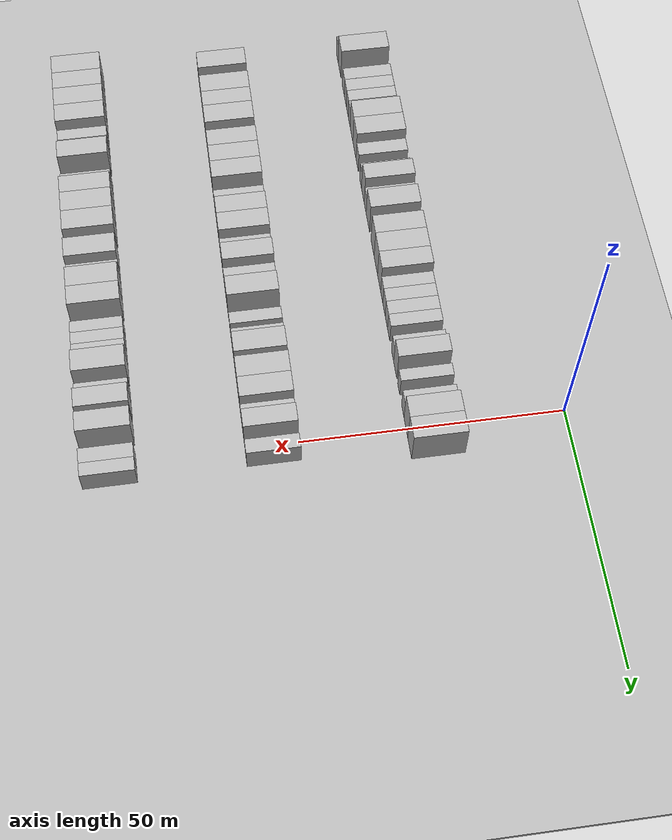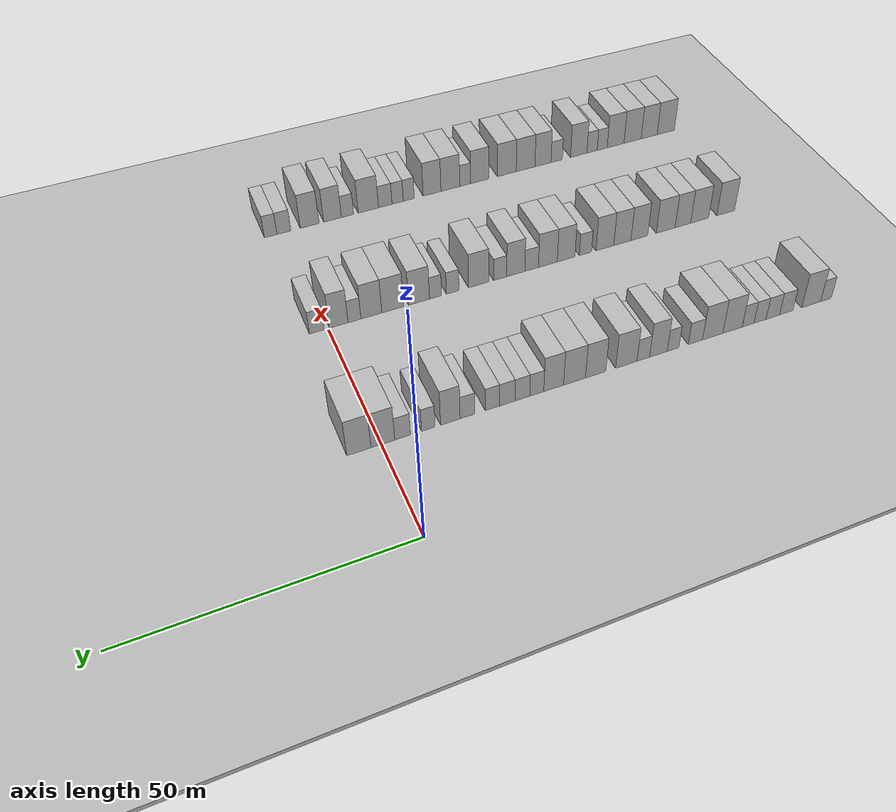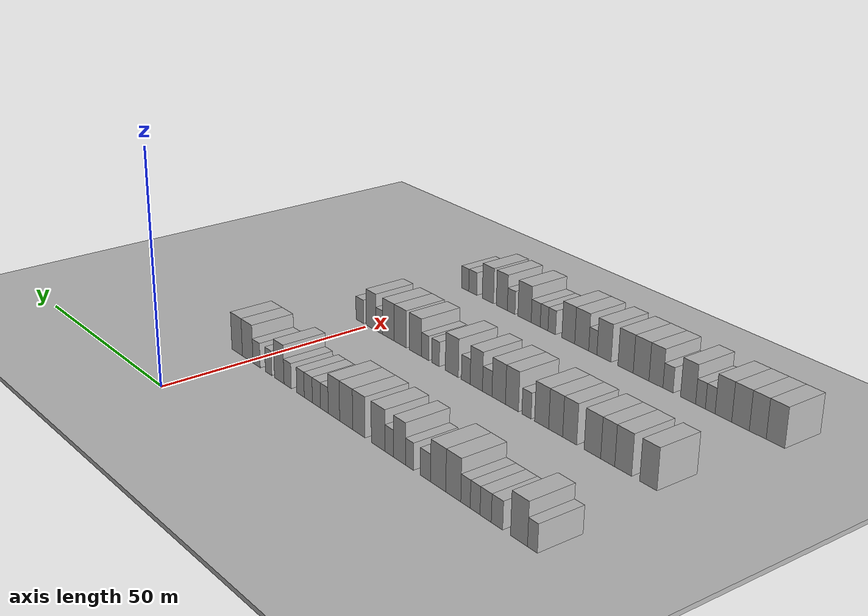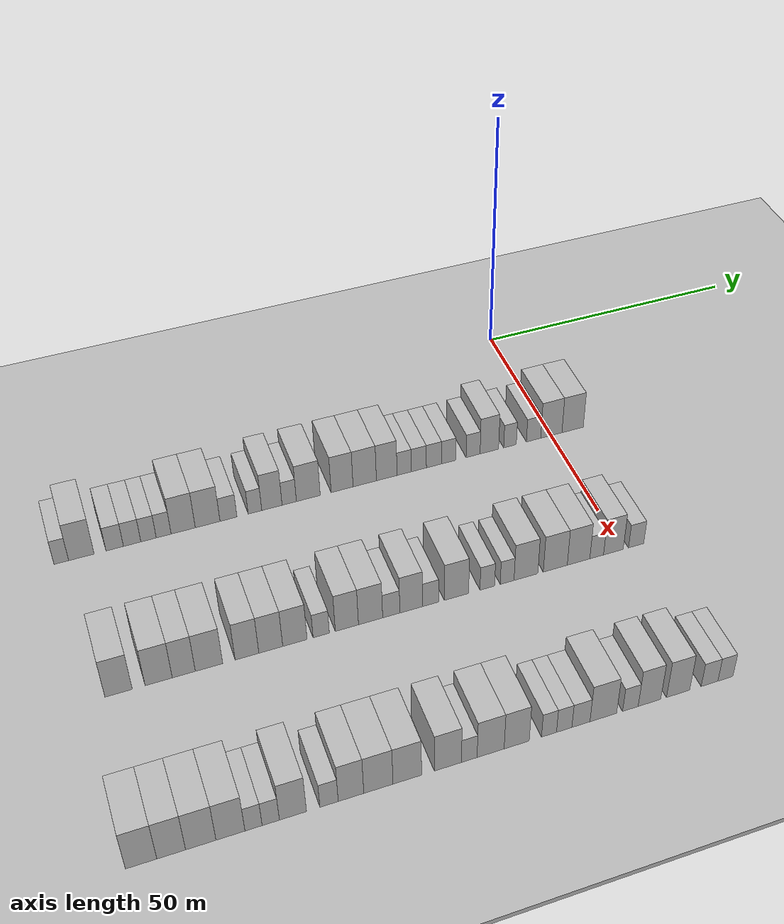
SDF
<sdf version="1.6">
 <world name="default">
  <include><name>ground_plane_1</name><uri>model://HANNAS_ground_plane</uri></include>
  <include>
   <name>ground_plane_2</name>
   <uri>model://HANNAS_ground_plane</uri>
   <pose>100 0 0  0 0 0</pose>
  </include>
  <model name="building_48">
   <static>1</static>
   <pose>25.0000 -89.6602 0 0.000000 0.000000 0.000000</pose>
   <link name="link">
    <pose>0 0 3.00 0 0 0</pose>
    <collision name="collision"><geometry><box><size>10.0000 2.4534 6.0000</size></box></geometry></collision>
    <visual name="visual">
     <cast_shadows>0</cast_shadows>
     <geometry><box><size>10.0000 2.4534 6.0000</size></box></geometry>
     <material>
      <script>
       <uri>model://HANNAS_wall/materials/scripts</uri>
       <uri>model://HANNAS_wall/materials/textures</uri>
       <name>vrc/HANNAS_wall</name>
      </script>
     </material>
    </visual>
   </link>
  </model>
  <model name="building_49">
   <static>1</static>
   <pose>25.0000 -86.2906 0 0.000000 0.000000 0.000000</pose>
   <link name="link">
    <pose>0 0 4.50 0 0 0</pose>
    <collision name="collision"><geometry><box><size>10.0000 4.2859 9.0000</size></box></geometry></collision>
    <visual name="visual">
     <cast_shadows>0</cast_shadows>
     <geometry><box><size>10.0000 4.2859 9.0000</size></box></geometry>
     <material>
      <script>
       <uri>model://HANNAS_wall/materials/scripts</uri>
       <uri>model://HANNAS_wall/materials/textures</uri>
       <name>vrc/HANNAS_wall</name>
      </script>
     </material>
    </visual>
   </link>
  </model>
  <model name="building_50">
   <static>1</static>
   <pose>25.0000 -80.6596 0 0.000000 0.000000 0.000000</pose>
   <link name="link">
    <pose>0 0 3.00 0 0 0</pose>
    <collision name="collision"><geometry><box><size>10.0000 2.9761 6.0000</size></box></geometry></collision>
    <visual name="visual">
     <cast_shadows>0</cast_shadows>
     <geometry><box><size>10.0000 2.9761 6.0000</size></box></geometry>
     <material>
      <script>
       <uri>model://HANNAS_wall/materials/scripts</uri>
       <uri>model://HANNAS_wall/materials/textures</uri>
       <name>vrc/HANNAS_wall</name>
      </script>
     </material>
    </visual>
   </link>
  </model>
  <model name="building_51">
   <static>1</static>
   <pose>25.0000 -77.6832 0 0.000000 0.000000 0.000000</pose>
   <link name="link">
    <pose>0 0 3.00 0 0 0</pose>
    <collision name="collision"><geometry><box><size>10.0000 2.9765 6.0000</size></box></geometry></collision>
    <visual name="visual">
     <cast_shadows>0</cast_shadows>
     <geometry><box><size>10.0000 2.9765 6.0000</size></box></geometry>
     <material>
      <script>
       <uri>model://HANNAS_wall/materials/scripts</uri>
       <uri>model://HANNAS_wall/materials/textures</uri>
       <name>vrc/HANNAS_wall</name>
      </script>
     </material>
    </visual>
   </link>
  </model>
  <model name="building_52">
   <static>1</static>
   <pose>25.0000 -74.8702 0 0.000000 0.000000 0.000000</pose>
   <link name="link">
    <pose>0 0 3.00 0 0 0</pose>
    <collision name="collision"><geometry><box><size>10.0000 2.6497 6.0000</size></box></geometry></collision>
    <visual name="visual">
     <cast_shadows>0</cast_shadows>
     <geometry><box><size>10.0000 2.6497 6.0000</size></box></geometry>
     <material>
      <script>
       <uri>model://HANNAS_wall/materials/scripts</uri>
       <uri>model://HANNAS_wall/materials/textures</uri>
       <name>vrc/HANNAS_wall</name>
      </script>
     </material>
    </visual>
   </link>
  </model>
  <model name="building_53">
   <static>1</static>
   <pose>25.0000 -72.2562 0 0.000000 0.000000 0.000000</pose>
   <link name="link">
    <pose>0 0 3.00 0 0 0</pose>
    <collision name="collision"><geometry><box><size>10.0000 2.5783 6.0000</size></box></geometry></collision>
    <visual name="visual">
     <cast_shadows>0</cast_shadows>
     <geometry><box><size>10.0000 2.5783 6.0000</size></box></geometry>
     <material>
      <script>
       <uri>model://HANNAS_wall/materials/scripts</uri>
       <uri>model://HANNAS_wall/materials/textures</uri>
       <name>vrc/HANNAS_wall</name>
      </script>
     </material>
    </visual>
   </link>
  </model>
  <model name="building_54">
   <static>1</static>
   <pose>25.0000 -68.8638 0 0.000000 0.000000 0.000000</pose>
   <link name="link">
    <pose>0 0 4.50 0 0 0</pose>
    <collision name="collision"><geometry><box><size>10.0000 4.2063 9.0000</size></box></geometry></collision>
    <visual name="visual">
     <cast_shadows>0</cast_shadows>
     <geometry><box><size>10.0000 4.2063 9.0000</size></box></geometry>
     <material>
      <script>
       <uri>model://HANNAS_wall/materials/scripts</uri>
       <uri>model://HANNAS_wall/materials/textures</uri>
       <name>vrc/HANNAS_wall</name>
      </script>
     </material>
    </visual>
   </link>
  </model>
  <model name="building_55">
   <static>1</static>
   <pose>25.0000 -64.5815 0 0.000000 0.000000 0.000000</pose>
   <link name="link">
    <pose>0 0 4.50 0 0 0</pose>
    <collision name="collision"><geometry><box><size>10.0000 4.3584 9.0000</size></box></geometry></collision>
    <visual name="visual">
     <cast_shadows>0</cast_shadows>
     <geometry><box><size>10.0000 4.3584 9.0000</size></box></geometry>
     <material>
      <script>
       <uri>model://HANNAS_wall/materials/scripts</uri>
       <uri>model://HANNAS_wall/materials/textures</uri>
       <name>vrc/HANNAS_wall</name>
      </script>
     </material>
    </visual>
   </link>
  </model>
  <model name="building_56">
   <static>1</static>
   <pose>25.0000 -60.9040 0 0.000000 0.000000 0.000000</pose>
   <link name="link">
    <pose>0 0 3.00 0 0 0</pose>
    <collision name="collision"><geometry><box><size>10.0000 2.9964 6.0000</size></box></geometry></collision>
    <visual name="visual">
     <cast_shadows>0</cast_shadows>
     <geometry><box><size>10.0000 2.9964 6.0000</size></box></geometry>
     <material>
      <script>
       <uri>model://HANNAS_wall/materials/scripts</uri>
       <uri>model://HANNAS_wall/materials/textures</uri>
       <name>vrc/HANNAS_wall</name>
      </script>
     </material>
    </visual>
   </link>
  </model>
  <model name="building_57">
   <static>1</static>
   <pose>25.0000 -56.1907 0 0.000000 0.000000 0.000000</pose>
   <link name="link">
    <pose>0 0 3.00 0 0 0</pose>
    <collision name="collision"><geometry><box><size>10.0000 2.4303 6.0000</size></box></geometry></collision>
    <visual name="visual">
     <cast_shadows>0</cast_shadows>
     <geometry><box><size>10.0000 2.4303 6.0000</size></box></geometry>
     <material>
      <script>
       <uri>model://HANNAS_wall/materials/scripts</uri>
       <uri>model://HANNAS_wall/materials/textures</uri>
       <name>vrc/HANNAS_wall</name>
      </script>
     </material>
    </visual>
   </link>
  </model>
  <model name="building_58">
   <static>1</static>
   <pose>25.0000 -53.1462 0 0.000000 0.000000 0.000000</pose>
   <link name="link">
    <pose>0 0 4.50 0 0 0</pose>
    <collision name="collision"><geometry><box><size>10.0000 3.6588 9.0000</size></box></geometry></collision>
    <visual name="visual">
     <cast_shadows>0</cast_shadows>
     <geometry><box><size>10.0000 3.6588 9.0000</size></box></geometry>
     <material>
      <script>
       <uri>model://HANNAS_wall/materials/scripts</uri>
       <uri>model://HANNAS_wall/materials/textures</uri>
       <name>vrc/HANNAS_wall</name>
      </script>
     </material>
    </visual>
   </link>
  </model>
  <model name="building_59">
   <static>1</static>
   <pose>25.0000 -50.0211 0 0.000000 0.000000 0.000000</pose>
   <link name="link">
    <pose>0 0 3.00 0 0 0</pose>
    <collision name="collision"><geometry><box><size>10.0000 2.5912 6.0000</size></box></geometry></collision>
    <visual name="visual">
     <cast_shadows>0</cast_shadows>
     <geometry><box><size>10.0000 2.5912 6.0000</size></box></geometry>
     <material>
      <script>
       <uri>model://HANNAS_wall/materials/scripts</uri>
       <uri>model://HANNAS_wall/materials/textures</uri>
       <name>vrc/HANNAS_wall</name>
      </script>
     </material>
    </visual>
   </link>
  </model>
  <model name="building_60">
   <static>1</static>
   <pose>25.0000 -46.5544 0 0.000000 0.000000 0.000000</pose>
   <link name="link">
    <pose>0 0 4.50 0 0 0</pose>
    <collision name="collision"><geometry><box><size>10.0000 4.3423 9.0000</size></box></geometry></collision>
    <visual name="visual">
     <cast_shadows>0</cast_shadows>
     <geometry><box><size>10.0000 4.3423 9.0000</size></box></geometry>
     <material>
      <script>
       <uri>model://HANNAS_wall/materials/scripts</uri>
       <uri>model://HANNAS_wall/materials/textures</uri>
       <name>vrc/HANNAS_wall</name>
      </script>
     </material>
    </visual>
   </link>
  </model>
  <model name="building_61">
   <static>1</static>
   <pose>25.0000 -40.3584 0 0.000000 0.000000 0.000000</pose>
   <link name="link">
    <pose>0 0 4.50 0 0 0</pose>
    <collision name="collision"><geometry><box><size>10.0000 4.0495 9.0000</size></box></geometry></collision>
    <visual name="visual">
     <cast_shadows>0</cast_shadows>
     <geometry><box><size>10.0000 4.0495 9.0000</size></box></geometry>
     <material>
      <script>
       <uri>model://HANNAS_wall/materials/scripts</uri>
       <uri>model://HANNAS_wall/materials/textures</uri>
       <name>vrc/HANNAS_wall</name>
      </script>
     </material>
    </visual>
   </link>
  </model>
  <model name="building_62">
   <static>1</static>
   <pose>25.0000 -36.1582 0 0.000000 0.000000 0.000000</pose>
   <link name="link">
    <pose>0 0 4.50 0 0 0</pose>
    <collision name="collision"><geometry><box><size>10.0000 4.3509 9.0000</size></box></geometry></collision>
    <visual name="visual">
     <cast_shadows>0</cast_shadows>
     <geometry><box><size>10.0000 4.3509 9.0000</size></box></geometry>
     <material>
      <script>
       <uri>model://HANNAS_wall/materials/scripts</uri>
       <uri>model://HANNAS_wall/materials/textures</uri>
       <name>vrc/HANNAS_wall</name>
      </script>
     </material>
    </visual>
   </link>
  </model>
  <model name="building_63">
   <static>1</static>
   <pose>25.0000 -32.0426 0 0.000000 0.000000 0.000000</pose>
   <link name="link">
    <pose>0 0 4.50 0 0 0</pose>
    <collision name="collision"><geometry><box><size>10.0000 3.8803 9.0000</size></box></geometry></collision>
    <visual name="visual">
     <cast_shadows>0</cast_shadows>
     <geometry><box><size>10.0000 3.8803 9.0000</size></box></geometry>
     <material>
      <script>
       <uri>model://HANNAS_wall/materials/scripts</uri>
       <uri>model://HANNAS_wall/materials/textures</uri>
       <name>vrc/HANNAS_wall</name>
      </script>
     </material>
    </visual>
   </link>
  </model>
  <model name="building_64">
   <static>1</static>
   <pose>25.0000 -28.7479 0 0.000000 0.000000 0.000000</pose>
   <link name="link">
    <pose>0 0 3.00 0 0 0</pose>
    <collision name="collision"><geometry><box><size>10.0000 2.7091 6.0000</size></box></geometry></collision>
    <visual name="visual">
     <cast_shadows>0</cast_shadows>
     <geometry><box><size>10.0000 2.7091 6.0000</size></box></geometry>
     <material>
      <script>
       <uri>model://HANNAS_wall/materials/scripts</uri>
       <uri>model://HANNAS_wall/materials/textures</uri>
       <name>vrc/HANNAS_wall</name>
      </script>
     </material>
    </visual>
   </link>
  </model>
  <model name="building_65">
   <static>1</static>
   <pose>25.0000 -25.9696 0 0.000000 0.000000 0.000000</pose>
   <link name="link">
    <pose>0 0 3.00 0 0 0</pose>
    <collision name="collision"><geometry><box><size>10.0000 2.8474 6.0000</size></box></geometry></collision>
    <visual name="visual">
     <cast_shadows>0</cast_shadows>
     <geometry><box><size>10.0000 2.8474 6.0000</size></box></geometry>
     <material>
      <script>
       <uri>model://HANNAS_wall/materials/scripts</uri>
       <uri>model://HANNAS_wall/materials/textures</uri>
       <name>vrc/HANNAS_wall</name>
      </script>
     </material>
    </visual>
   </link>
  </model>
  <model name="building_66">
   <static>1</static>
   <pose>25.0000 -23.0898 0 0.000000 0.000000 0.000000</pose>
   <link name="link">
    <pose>0 0 3.00 0 0 0</pose>
    <collision name="collision"><geometry><box><size>10.0000 2.9123 6.0000</size></box></geometry></collision>
    <visual name="visual">
     <cast_shadows>0</cast_shadows>
     <geometry><box><size>10.0000 2.9123 6.0000</size></box></geometry>
     <material>
      <script>
       <uri>model://HANNAS_wall/materials/scripts</uri>
       <uri>model://HANNAS_wall/materials/textures</uri>
       <name>vrc/HANNAS_wall</name>
      </script>
     </material>
    </visual>
   </link>
  </model>
  <model name="building_67">
   <static>1</static>
   <pose>25.0000 -20.2765 0 0.000000 0.000000 0.000000</pose>
   <link name="link">
    <pose>0 0 3.00 0 0 0</pose>
    <collision name="collision"><geometry><box><size>10.0000 2.7142 6.0000</size></box></geometry></collision>
    <visual name="visual">
     <cast_shadows>0</cast_shadows>
     <geometry><box><size>10.0000 2.7142 6.0000</size></box></geometry>
     <material>
      <script>
       <uri>model://HANNAS_wall/materials/scripts</uri>
       <uri>model://HANNAS_wall/materials/textures</uri>
       <name>vrc/HANNAS_wall</name>
      </script>
     </material>
    </visual>
   </link>
  </model>
  <model name="building_68">
   <static>1</static>
   <pose>25.0000 -15.5667 0 0.000000 0.000000 0.000000</pose>
   <link name="link">
    <pose>0 0 3.00 0 0 0</pose>
    <collision name="collision"><geometry><box><size>10.0000 2.7056 6.0000</size></box></geometry></collision>
    <visual name="visual">
     <cast_shadows>0</cast_shadows>
     <geometry><box><size>10.0000 2.7056 6.0000</size></box></geometry>
     <material>
      <script>
       <uri>model://HANNAS_wall/materials/scripts</uri>
       <uri>model://HANNAS_wall/materials/textures</uri>
       <name>vrc/HANNAS_wall</name>
      </script>
     </material>
    </visual>
   </link>
  </model>
  <model name="building_69">
   <static>1</static>
   <pose>25.0000 -12.4061 0 0.000000 0.000000 0.000000</pose>
   <link name="link">
    <pose>0 0 4.50 0 0 0</pose>
    <collision name="collision"><geometry><box><size>10.0000 3.6156 9.0000</size></box></geometry></collision>
    <visual name="visual">
     <cast_shadows>0</cast_shadows>
     <geometry><box><size>10.0000 3.6156 9.0000</size></box></geometry>
     <material>
      <script>
       <uri>model://HANNAS_wall/materials/scripts</uri>
       <uri>model://HANNAS_wall/materials/textures</uri>
       <name>vrc/HANNAS_wall</name>
      </script>
     </material>
    </visual>
   </link>
  </model>
  <model name="building_70">
   <static>1</static>
   <pose>25.0000 -8.3591 0 0.000000 0.000000 0.000000</pose>
   <link name="link">
    <pose>0 0 3.00 0 0 0</pose>
    <collision name="collision"><geometry><box><size>10.0000 2.4783 6.0000</size></box></geometry></collision>
    <visual name="visual">
     <cast_shadows>0</cast_shadows>
     <geometry><box><size>10.0000 2.4783 6.0000</size></box></geometry>
     <material>
      <script>
       <uri>model://HANNAS_wall/materials/scripts</uri>
       <uri>model://HANNAS_wall/materials/textures</uri>
       <name>vrc/HANNAS_wall</name>
      </script>
     </material>
    </visual>
   </link>
  </model>
  <model name="building_71">
   <static>1</static>
   <pose>25.0000 -3.7026 0 0.000000 0.000000 0.000000</pose>
   <link name="link">
    <pose>0 0 3.00 0 0 0</pose>
    <collision name="collision"><geometry><box><size>10.0000 2.8347 6.0000</size></box></geometry></collision>
    <visual name="visual">
     <cast_shadows>0</cast_shadows>
     <geometry><box><size>10.0000 2.8347 6.0000</size></box></geometry>
     <material>
      <script>
       <uri>model://HANNAS_wall/materials/scripts</uri>
       <uri>model://HANNAS_wall/materials/textures</uri>
       <name>vrc/HANNAS_wall</name>
      </script>
     </material>
    </visual>
   </link>
  </model>
  <model name="building_72">
   <static>1</static>
   <pose>25.0000 -0.1595 0 0.000000 0.000000 0.000000</pose>
   <link name="link">
    <pose>0 0 4.50 0 0 0</pose>
    <collision name="collision"><geometry><box><size>10.0000 4.2514 9.0000</size></box></geometry></collision>
    <visual name="visual">
     <cast_shadows>0</cast_shadows>
     <geometry><box><size>10.0000 4.2514 9.0000</size></box></geometry>
     <material>
      <script>
       <uri>model://HANNAS_wall/materials/scripts</uri>
       <uri>model://HANNAS_wall/materials/textures</uri>
       <name>vrc/HANNAS_wall</name>
      </script>
     </material>
    </visual>
   </link>
  </model>
  <model name="building_73">
   <static>1</static>
   <pose>25.0000 4.1109 0 0.000000 0.000000 0.000000</pose>
   <link name="link">
    <pose>0 0 4.50 0 0 0</pose>
    <collision name="collision"><geometry><box><size>10.0000 4.2893 9.0000</size></box></geometry></collision>
    <visual name="visual">
     <cast_shadows>0</cast_shadows>
     <geometry><box><size>10.0000 4.2893 9.0000</size></box></geometry>
     <material>
      <script>
       <uri>model://HANNAS_wall/materials/scripts</uri>
       <uri>model://HANNAS_wall/materials/textures</uri>
       <name>vrc/HANNAS_wall</name>
      </script>
     </material>
    </visual>
   </link>
  </model>
  <model name="building_199">
   <static>1</static>
   <pose>55.0000 -85.9226 0 0.000000 0.000000 0.000000</pose>
   <link name="link">
    <pose>0 0 4.50 0 0 0</pose>
    <collision name="collision"><geometry><box><size>10.0000 4.2424 9.0000</size></box></geometry></collision>
    <visual name="visual">
     <cast_shadows>0</cast_shadows>
     <geometry><box><size>10.0000 4.2424 9.0000</size></box></geometry>
     <material>
      <script>
       <uri>model://HANNAS_wall/materials/scripts</uri>
       <uri>model://HANNAS_wall/materials/textures</uri>
       <name>vrc/HANNAS_wall</name>
      </script>
     </material>
    </visual>
   </link>
  </model>
  <model name="building_200">
   <static>1</static>
   <pose>55.0000 -79.6617 0 0.000000 0.000000 0.000000</pose>
   <link name="link">
    <pose>0 0 4.50 0 0 0</pose>
    <collision name="collision"><geometry><box><size>10.0000 4.2793 9.0000</size></box></geometry></collision>
    <visual name="visual">
     <cast_shadows>0</cast_shadows>
     <geometry><box><size>10.0000 4.2793 9.0000</size></box></geometry>
     <material>
      <script>
       <uri>model://HANNAS_wall/materials/scripts</uri>
       <uri>model://HANNAS_wall/materials/textures</uri>
       <name>vrc/HANNAS_wall</name>
      </script>
     </material>
    </visual>
   </link>
  </model>
  <model name="building_201">
   <static>1</static>
   <pose>55.0000 -75.6978 0 0.000000 0.000000 0.000000</pose>
   <link name="link">
    <pose>0 0 4.50 0 0 0</pose>
    <collision name="collision"><geometry><box><size>10.0000 3.6485 9.0000</size></box></geometry></collision>
    <visual name="visual">
     <cast_shadows>0</cast_shadows>
     <geometry><box><size>10.0000 3.6485 9.0000</size></box></geometry>
     <material>
      <script>
       <uri>model://HANNAS_wall/materials/scripts</uri>
       <uri>model://HANNAS_wall/materials/textures</uri>
       <name>vrc/HANNAS_wall</name>
      </script>
     </material>
    </visual>
   </link>
  </model>
  <model name="building_202">
   <static>1</static>
   <pose>55.0000 -71.6821 0 0.000000 0.000000 0.000000</pose>
   <link name="link">
    <pose>0 0 4.50 0 0 0</pose>
    <collision name="collision"><geometry><box><size>10.0000 4.3829 9.0000</size></box></geometry></collision>
    <visual name="visual">
     <cast_shadows>0</cast_shadows>
     <geometry><box><size>10.0000 4.3829 9.0000</size></box></geometry>
     <material>
      <script>
       <uri>model://HANNAS_wall/materials/scripts</uri>
       <uri>model://HANNAS_wall/materials/textures</uri>
       <name>vrc/HANNAS_wall</name>
      </script>
     </material>
    </visual>
   </link>
  </model>
  <model name="building_203">
   <static>1</static>
   <pose>55.0000 -65.5681 0 0.000000 0.000000 0.000000</pose>
   <link name="link">
    <pose>0 0 4.50 0 0 0</pose>
    <collision name="collision"><geometry><box><size>10.0000 3.8451 9.0000</size></box></geometry></collision>
    <visual name="visual">
     <cast_shadows>0</cast_shadows>
     <geometry><box><size>10.0000 3.8451 9.0000</size></box></geometry>
     <material>
      <script>
       <uri>model://HANNAS_wall/materials/scripts</uri>
       <uri>model://HANNAS_wall/materials/textures</uri>
       <name>vrc/HANNAS_wall</name>
      </script>
     </material>
    </visual>
   </link>
  </model>
  <model name="building_204">
   <static>1</static>
   <pose>55.0000 -61.6935 0 0.000000 0.000000 0.000000</pose>
   <link name="link">
    <pose>0 0 4.50 0 0 0</pose>
    <collision name="collision"><geometry><box><size>10.0000 3.9040 9.0000</size></box></geometry></collision>
    <visual name="visual">
     <cast_shadows>0</cast_shadows>
     <geometry><box><size>10.0000 3.9040 9.0000</size></box></geometry>
     <material>
      <script>
       <uri>model://HANNAS_wall/materials/scripts</uri>
       <uri>model://HANNAS_wall/materials/textures</uri>
       <name>vrc/HANNAS_wall</name>
      </script>
     </material>
    </visual>
   </link>
  </model>
  <model name="building_205">
   <static>1</static>
   <pose>55.0000 -57.7324 0 0.000000 0.000000 0.000000</pose>
   <link name="link">
    <pose>0 0 4.50 0 0 0</pose>
    <collision name="collision"><geometry><box><size>10.0000 4.0182 9.0000</size></box></geometry></collision>
    <visual name="visual">
     <cast_shadows>0</cast_shadows>
     <geometry><box><size>10.0000 4.0182 9.0000</size></box></geometry>
     <material>
      <script>
       <uri>model://HANNAS_wall/materials/scripts</uri>
       <uri>model://HANNAS_wall/materials/textures</uri>
       <name>vrc/HANNAS_wall</name>
      </script>
     </material>
    </visual>
   </link>
  </model>
  <model name="building_206">
   <static>1</static>
   <pose>55.0000 -53.3707 0 0.000000 0.000000 0.000000</pose>
   <link name="link">
    <pose>0 0 3.00 0 0 0</pose>
    <collision name="collision"><geometry><box><size>10.0000 2.7052 6.0000</size></box></geometry></collision>
    <visual name="visual">
     <cast_shadows>0</cast_shadows>
     <geometry><box><size>10.0000 2.7052 6.0000</size></box></geometry>
     <material>
      <script>
       <uri>model://HANNAS_wall/materials/scripts</uri>
       <uri>model://HANNAS_wall/materials/textures</uri>
       <name>vrc/HANNAS_wall</name>
      </script>
     </material>
    </visual>
   </link>
  </model>
  <model name="building_207">
   <static>1</static>
   <pose>55.0000 -49.0708 0 0.000000 0.000000 0.000000</pose>
   <link name="link">
    <pose>0 0 4.50 0 0 0</pose>
    <collision name="collision"><geometry><box><size>10.0000 3.8946 9.0000</size></box></geometry></collision>
    <visual name="visual">
     <cast_shadows>0</cast_shadows>
     <geometry><box><size>10.0000 3.8946 9.0000</size></box></geometry>
     <material>
      <script>
       <uri>model://HANNAS_wall/materials/scripts</uri>
       <uri>model://HANNAS_wall/materials/textures</uri>
       <name>vrc/HANNAS_wall</name>
      </script>
     </material>
    </visual>
   </link>
  </model>
  <model name="building_208">
   <static>1</static>
   <pose>55.0000 -45.0708 0 0.000000 0.000000 0.000000</pose>
   <link name="link">
    <pose>0 0 4.50 0 0 0</pose>
    <collision name="collision"><geometry><box><size>10.0000 4.1054 9.0000</size></box></geometry></collision>
    <visual name="visual">
     <cast_shadows>0</cast_shadows>
     <geometry><box><size>10.0000 4.1054 9.0000</size></box></geometry>
     <material>
      <script>
       <uri>model://HANNAS_wall/materials/scripts</uri>
       <uri>model://HANNAS_wall/materials/textures</uri>
       <name>vrc/HANNAS_wall</name>
      </script>
     </material>
    </visual>
   </link>
  </model>
  <model name="building_209">
   <static>1</static>
   <pose>55.0000 -41.5473 0 0.000000 0.000000 0.000000</pose>
   <link name="link">
    <pose>0 0 3.00 0 0 0</pose>
    <collision name="collision"><geometry><box><size>10.0000 2.9417 6.0000</size></box></geometry></collision>
    <visual name="visual">
     <cast_shadows>0</cast_shadows>
     <geometry><box><size>10.0000 2.9417 6.0000</size></box></geometry>
     <material>
      <script>
       <uri>model://HANNAS_wall/materials/scripts</uri>
       <uri>model://HANNAS_wall/materials/textures</uri>
       <name>vrc/HANNAS_wall</name>
      </script>
     </material>
    </visual>
   </link>
  </model>
  <model name="building_210">
   <static>1</static>
   <pose>55.0000 -38.1308 0 0.000000 0.000000 0.000000</pose>
   <link name="link">
    <pose>0 0 4.50 0 0 0</pose>
    <collision name="collision"><geometry><box><size>10.0000 3.8912 9.0000</size></box></geometry></collision>
    <visual name="visual">
     <cast_shadows>0</cast_shadows>
     <geometry><box><size>10.0000 3.8912 9.0000</size></box></geometry>
     <material>
      <script>
       <uri>model://HANNAS_wall/materials/scripts</uri>
       <uri>model://HANNAS_wall/materials/textures</uri>
       <name>vrc/HANNAS_wall</name>
      </script>
     </material>
    </visual>
   </link>
  </model>
  <model name="building_211">
   <static>1</static>
   <pose>55.0000 -34.7824 0 0.000000 0.000000 0.000000</pose>
   <link name="link">
    <pose>0 0 3.00 0 0 0</pose>
    <collision name="collision"><geometry><box><size>10.0000 2.8056 6.0000</size></box></geometry></collision>
    <visual name="visual">
     <cast_shadows>0</cast_shadows>
     <geometry><box><size>10.0000 2.8056 6.0000</size></box></geometry>
     <material>
      <script>
       <uri>model://HANNAS_wall/materials/scripts</uri>
       <uri>model://HANNAS_wall/materials/textures</uri>
       <name>vrc/HANNAS_wall</name>
      </script>
     </material>
    </visual>
   </link>
  </model>
  <model name="building_212">
   <static>1</static>
   <pose>55.0000 -30.2515 0 0.000000 0.000000 0.000000</pose>
   <link name="link">
    <pose>0 0 4.50 0 0 0</pose>
    <collision name="collision"><geometry><box><size>10.0000 4.2562 9.0000</size></box></geometry></collision>
    <visual name="visual">
     <cast_shadows>0</cast_shadows>
     <geometry><box><size>10.0000 4.2562 9.0000</size></box></geometry>
     <material>
      <script>
       <uri>model://HANNAS_wall/materials/scripts</uri>
       <uri>model://HANNAS_wall/materials/textures</uri>
       <name>vrc/HANNAS_wall</name>
      </script>
     </material>
    </visual>
   </link>
  </model>
  <model name="building_213">
   <static>1</static>
   <pose>55.0000 -24.8271 0 0.000000 0.000000 0.000000</pose>
   <link name="link">
    <pose>0 0 3.00 0 0 0</pose>
    <collision name="collision"><geometry><box><size>10.0000 2.5927 6.0000</size></box></geometry></collision>
    <visual name="visual">
     <cast_shadows>0</cast_shadows>
     <geometry><box><size>10.0000 2.5927 6.0000</size></box></geometry>
     <material>
      <script>
       <uri>model://HANNAS_wall/materials/scripts</uri>
       <uri>model://HANNAS_wall/materials/textures</uri>
       <name>vrc/HANNAS_wall</name>
      </script>
     </material>
    </visual>
   </link>
  </model>
  <model name="building_214">
   <static>1</static>
   <pose>55.0000 -21.2975 0 0.000000 0.000000 0.000000</pose>
   <link name="link">
    <pose>0 0 3.00 0 0 0</pose>
    <collision name="collision"><geometry><box><size>10.0000 2.4666 6.0000</size></box></geometry></collision>
    <visual name="visual">
     <cast_shadows>0</cast_shadows>
     <geometry><box><size>10.0000 2.4666 6.0000</size></box></geometry>
     <material>
      <script>
       <uri>model://HANNAS_wall/materials/scripts</uri>
       <uri>model://HANNAS_wall/materials/textures</uri>
       <name>vrc/HANNAS_wall</name>
      </script>
     </material>
    </visual>
   </link>
  </model>
  <model name="building_215">
   <static>1</static>
   <pose>55.0000 -17.9265 0 0.000000 0.000000 0.000000</pose>
   <link name="link">
    <pose>0 0 4.50 0 0 0</pose>
    <collision name="collision"><geometry><box><size>10.0000 4.2754 9.0000</size></box></geometry></collision>
    <visual name="visual">
     <cast_shadows>0</cast_shadows>
     <geometry><box><size>10.0000 4.2754 9.0000</size></box></geometry>
     <material>
      <script>
       <uri>model://HANNAS_wall/materials/scripts</uri>
       <uri>model://HANNAS_wall/materials/textures</uri>
       <name>vrc/HANNAS_wall</name>
      </script>
     </material>
    </visual>
   </link>
  </model>
  <model name="building_216">
   <static>1</static>
   <pose>55.0000 -12.6081 0 0.000000 0.000000 0.000000</pose>
   <link name="link">
    <pose>0 0 4.50 0 0 0</pose>
    <collision name="collision"><geometry><box><size>10.0000 4.3614 9.0000</size></box></geometry></collision>
    <visual name="visual">
     <cast_shadows>0</cast_shadows>
     <geometry><box><size>10.0000 4.3614 9.0000</size></box></geometry>
     <material>
      <script>
       <uri>model://HANNAS_wall/materials/scripts</uri>
       <uri>model://HANNAS_wall/materials/textures</uri>
       <name>vrc/HANNAS_wall</name>
      </script>
     </material>
    </visual>
   </link>
  </model>
  <model name="building_217">
   <static>1</static>
   <pose>55.0000 -8.3592 0 0.000000 0.000000 0.000000</pose>
   <link name="link">
    <pose>0 0 4.50 0 0 0</pose>
    <collision name="collision"><geometry><box><size>10.0000 4.1364 9.0000</size></box></geometry></collision>
    <visual name="visual">
     <cast_shadows>0</cast_shadows>
     <geometry><box><size>10.0000 4.1364 9.0000</size></box></geometry>
     <material>
      <script>
       <uri>model://HANNAS_wall/materials/scripts</uri>
       <uri>model://HANNAS_wall/materials/textures</uri>
       <name>vrc/HANNAS_wall</name>
      </script>
     </material>
    </visual>
   </link>
  </model>
  <model name="building_218">
   <static>1</static>
   <pose>55.0000 -5.0209 0 0.000000 0.000000 0.000000</pose>
   <link name="link">
    <pose>0 0 3.00 0 0 0</pose>
    <collision name="collision"><geometry><box><size>10.0000 2.5402 6.0000</size></box></geometry></collision>
    <visual name="visual">
     <cast_shadows>0</cast_shadows>
     <geometry><box><size>10.0000 2.5402 6.0000</size></box></geometry>
     <material>
      <script>
       <uri>model://HANNAS_wall/materials/scripts</uri>
       <uri>model://HANNAS_wall/materials/textures</uri>
       <name>vrc/HANNAS_wall</name>
      </script>
     </material>
    </visual>
   </link>
  </model>
  <model name="building_219">
   <static>1</static>
   <pose>55.0000 -1.9200 0 0.000000 0.000000 0.000000</pose>
   <link name="link">
    <pose>0 0 4.50 0 0 0</pose>
    <collision name="collision"><geometry><box><size>10.0000 3.6615 9.0000</size></box></geometry></collision>
    <visual name="visual">
     <cast_shadows>0</cast_shadows>
     <geometry><box><size>10.0000 3.6615 9.0000</size></box></geometry>
     <material>
      <script>
       <uri>model://HANNAS_wall/materials/scripts</uri>
       <uri>model://HANNAS_wall/materials/textures</uri>
       <name>vrc/HANNAS_wall</name>
      </script>
     </material>
    </visual>
   </link>
  </model>
  <model name="building_220">
   <static>1</static>
   <pose>55.0000 2.3395 0 0.000000 0.000000 0.000000</pose>
   <link name="link">
    <pose>0 0 3.00 0 0 0</pose>
    <collision name="collision"><geometry><box><size>10.0000 2.8575 6.0000</size></box></geometry></collision>
    <visual name="visual">
     <cast_shadows>0</cast_shadows>
     <geometry><box><size>10.0000 2.8575 6.0000</size></box></geometry>
     <material>
      <script>
       <uri>model://HANNAS_wall/materials/scripts</uri>
       <uri>model://HANNAS_wall/materials/textures</uri>
       <name>vrc/HANNAS_wall</name>
      </script>
     </material>
    </visual>
   </link>
  </model>
  <model name="building_335">
   <static>1</static>
   <pose>85.0000 -88.6926 0 0.000000 0.000000 0.000000</pose>
   <link name="link">
    <pose>0 0 4.50 0 0 0</pose>
    <collision name="collision"><geometry><box><size>10.0000 4.4138 9.0000</size></box></geometry></collision>
    <visual name="visual">
     <cast_shadows>0</cast_shadows>
     <geometry><box><size>10.0000 4.4138 9.0000</size></box></geometry>
     <material>
      <script>
       <uri>model://HANNAS_wall/materials/scripts</uri>
       <uri>model://HANNAS_wall/materials/textures</uri>
       <name>vrc/HANNAS_wall</name>
      </script>
     </material>
    </visual>
   </link>
  </model>
  <model name="building_336">
   <static>1</static>
   <pose>85.0000 -84.4396 0 0.000000 0.000000 0.000000</pose>
   <link name="link">
    <pose>0 0 4.50 0 0 0</pose>
    <collision name="collision"><geometry><box><size>10.0000 4.0922 9.0000</size></box></geometry></collision>
    <visual name="visual">
     <cast_shadows>0</cast_shadows>
     <geometry><box><size>10.0000 4.0922 9.0000</size></box></geometry>
     <material>
      <script>
       <uri>model://HANNAS_wall/materials/scripts</uri>
       <uri>model://HANNAS_wall/materials/textures</uri>
       <name>vrc/HANNAS_wall</name>
      </script>
     </material>
    </visual>
   </link>
  </model>
  <model name="building_337">
   <static>1</static>
   <pose>85.0000 -80.2112 0 0.000000 0.000000 0.000000</pose>
   <link name="link">
    <pose>0 0 4.50 0 0 0</pose>
    <collision name="collision"><geometry><box><size>10.0000 4.3647 9.0000</size></box></geometry></collision>
    <visual name="visual">
     <cast_shadows>0</cast_shadows>
     <geometry><box><size>10.0000 4.3647 9.0000</size></box></geometry>
     <material>
      <script>
       <uri>model://HANNAS_wall/materials/scripts</uri>
       <uri>model://HANNAS_wall/materials/textures</uri>
       <name>vrc/HANNAS_wall</name>
      </script>
     </material>
    </visual>
   </link>
  </model>
  <model name="building_338">
   <static>1</static>
   <pose>85.0000 -75.9217 0 0.000000 0.000000 0.000000</pose>
   <link name="link">
    <pose>0 0 4.50 0 0 0</pose>
    <collision name="collision"><geometry><box><size>10.0000 4.2143 9.0000</size></box></geometry></collision>
    <visual name="visual">
     <cast_shadows>0</cast_shadows>
     <geometry><box><size>10.0000 4.2143 9.0000</size></box></geometry>
     <material>
      <script>
       <uri>model://HANNAS_wall/materials/scripts</uri>
       <uri>model://HANNAS_wall/materials/textures</uri>
       <name>vrc/HANNAS_wall</name>
      </script>
     </material>
    </visual>
   </link>
  </model>
  <model name="building_339">
   <static>1</static>
   <pose>85.0000 -72.5596 0 0.000000 0.000000 0.000000</pose>
   <link name="link">
    <pose>0 0 3.00 0 0 0</pose>
    <collision name="collision"><geometry><box><size>10.0000 2.5099 6.0000</size></box></geometry></collision>
    <visual name="visual">
     <cast_shadows>0</cast_shadows>
     <geometry><box><size>10.0000 2.5099 6.0000</size></box></geometry>
     <material>
      <script>
       <uri>model://HANNAS_wall/materials/scripts</uri>
       <uri>model://HANNAS_wall/materials/textures</uri>
       <name>vrc/HANNAS_wall</name>
      </script>
     </material>
    </visual>
   </link>
  </model>
  <model name="building_340">
   <static>1</static>
   <pose>85.0000 -70.0370 0 0.000000 0.000000 0.000000</pose>
   <link name="link">
    <pose>0 0 3.00 0 0 0</pose>
    <collision name="collision"><geometry><box><size>10.0000 2.5354 6.0000</size></box></geometry></collision>
    <visual name="visual">
     <cast_shadows>0</cast_shadows>
     <geometry><box><size>10.0000 2.5354 6.0000</size></box></geometry>
     <material>
      <script>
       <uri>model://HANNAS_wall/materials/scripts</uri>
       <uri>model://HANNAS_wall/materials/textures</uri>
       <name>vrc/HANNAS_wall</name>
      </script>
     </material>
    </visual>
   </link>
  </model>
  <model name="building_341">
   <static>1</static>
   <pose>85.0000 -66.7563 0 0.000000 0.000000 0.000000</pose>
   <link name="link">
    <pose>0 0 4.50 0 0 0</pose>
    <collision name="collision"><geometry><box><size>10.0000 4.0259 9.0000</size></box></geometry></collision>
    <visual name="visual">
     <cast_shadows>0</cast_shadows>
     <geometry><box><size>10.0000 4.0259 9.0000</size></box></geometry>
     <material>
      <script>
       <uri>model://HANNAS_wall/materials/scripts</uri>
       <uri>model://HANNAS_wall/materials/textures</uri>
       <name>vrc/HANNAS_wall</name>
      </script>
     </material>
    </visual>
   </link>
  </model>
  <model name="building_342">
   <static>1</static>
   <pose>85.0000 -61.3647 0 0.000000 0.000000 0.000000</pose>
   <link name="link">
    <pose>0 0 3.00 0 0 0</pose>
    <collision name="collision"><geometry><box><size>10.0000 2.7573 6.0000</size></box></geometry></collision>
    <visual name="visual">
     <cast_shadows>0</cast_shadows>
     <geometry><box><size>10.0000 2.7573 6.0000</size></box></geometry>
     <material>
      <script>
       <uri>model://HANNAS_wall/materials/scripts</uri>
       <uri>model://HANNAS_wall/materials/textures</uri>
       <name>vrc/HANNAS_wall</name>
      </script>
     </material>
    </visual>
   </link>
  </model>
  <model name="building_343">
   <static>1</static>
   <pose>85.0000 -58.0456 0 0.000000 0.000000 0.000000</pose>
   <link name="link">
    <pose>0 0 4.50 0 0 0</pose>
    <collision name="collision"><geometry><box><size>10.0000 3.8807 9.0000</size></box></geometry></collision>
    <visual name="visual">
     <cast_shadows>0</cast_shadows>
     <geometry><box><size>10.0000 3.8807 9.0000</size></box></geometry>
     <material>
      <script>
       <uri>model://HANNAS_wall/materials/scripts</uri>
       <uri>model://HANNAS_wall/materials/textures</uri>
       <name>vrc/HANNAS_wall</name>
      </script>
     </material>
    </visual>
   </link>
  </model>
  <model name="building_344">
   <static>1</static>
   <pose>85.0000 -53.8703 0 0.000000 0.000000 0.000000</pose>
   <link name="link">
    <pose>0 0 4.50 0 0 0</pose>
    <collision name="collision"><geometry><box><size>10.0000 4.4700 9.0000</size></box></geometry></collision>
    <visual name="visual">
     <cast_shadows>0</cast_shadows>
     <geometry><box><size>10.0000 4.4700 9.0000</size></box></geometry>
     <material>
      <script>
       <uri>model://HANNAS_wall/materials/scripts</uri>
       <uri>model://HANNAS_wall/materials/textures</uri>
       <name>vrc/HANNAS_wall</name>
      </script>
     </material>
    </visual>
   </link>
  </model>
  <model name="building_345">
   <static>1</static>
   <pose>85.0000 -49.4220 0 0.000000 0.000000 0.000000</pose>
   <link name="link">
    <pose>0 0 4.50 0 0 0</pose>
    <collision name="collision"><geometry><box><size>10.0000 4.4265 9.0000</size></box></geometry></collision>
    <visual name="visual">
     <cast_shadows>0</cast_shadows>
     <geometry><box><size>10.0000 4.4265 9.0000</size></box></geometry>
     <material>
      <script>
       <uri>model://HANNAS_wall/materials/scripts</uri>
       <uri>model://HANNAS_wall/materials/textures</uri>
       <name>vrc/HANNAS_wall</name>
      </script>
     </material>
    </visual>
   </link>
  </model>
  <model name="building_346">
   <static>1</static>
   <pose>85.0000 -43.0836 0 0.000000 0.000000 0.000000</pose>
   <link name="link">
    <pose>0 0 4.50 0 0 0</pose>
    <collision name="collision"><geometry><box><size>10.0000 4.2503 9.0000</size></box></geometry></collision>
    <visual name="visual">
     <cast_shadows>0</cast_shadows>
     <geometry><box><size>10.0000 4.2503 9.0000</size></box></geometry>
     <material>
      <script>
       <uri>model://HANNAS_wall/materials/scripts</uri>
       <uri>model://HANNAS_wall/materials/textures</uri>
       <name>vrc/HANNAS_wall</name>
      </script>
     </material>
    </visual>
   </link>
  </model>
  <model name="building_347">
   <static>1</static>
   <pose>85.0000 -39.7151 0 0.000000 0.000000 0.000000</pose>
   <link name="link">
    <pose>0 0 3.00 0 0 0</pose>
    <collision name="collision"><geometry><box><size>10.0000 2.4867 6.0000</size></box></geometry></collision>
    <visual name="visual">
     <cast_shadows>0</cast_shadows>
     <geometry><box><size>10.0000 2.4867 6.0000</size></box></geometry>
     <material>
      <script>
       <uri>model://HANNAS_wall/materials/scripts</uri>
       <uri>model://HANNAS_wall/materials/textures</uri>
       <name>vrc/HANNAS_wall</name>
      </script>
     </material>
    </visual>
   </link>
  </model>
  <model name="building_348">
   <static>1</static>
   <pose>85.0000 -36.3137 0 0.000000 0.000000 0.000000</pose>
   <link name="link">
    <pose>0 0 4.50 0 0 0</pose>
    <collision name="collision"><geometry><box><size>10.0000 4.3159 9.0000</size></box></geometry></collision>
    <visual name="visual">
     <cast_shadows>0</cast_shadows>
     <geometry><box><size>10.0000 4.3159 9.0000</size></box></geometry>
     <material>
      <script>
       <uri>model://HANNAS_wall/materials/scripts</uri>
       <uri>model://HANNAS_wall/materials/textures</uri>
       <name>vrc/HANNAS_wall</name>
      </script>
     </material>
    </visual>
   </link>
  </model>
  <model name="building_349">
   <static>1</static>
   <pose>85.0000 -32.1311 0 0.000000 0.000000 0.000000</pose>
   <link name="link">
    <pose>0 0 4.50 0 0 0</pose>
    <collision name="collision"><geometry><box><size>10.0000 4.0494 9.0000</size></box></geometry></collision>
    <visual name="visual">
     <cast_shadows>0</cast_shadows>
     <geometry><box><size>10.0000 4.0494 9.0000</size></box></geometry>
     <material>
      <script>
       <uri>model://HANNAS_wall/materials/scripts</uri>
       <uri>model://HANNAS_wall/materials/textures</uri>
       <name>vrc/HANNAS_wall</name>
      </script>
     </material>
    </visual>
   </link>
  </model>
  <model name="building_350">
   <static>1</static>
   <pose>85.0000 -26.8806 0 0.000000 0.000000 0.000000</pose>
   <link name="link">
    <pose>0 0 3.00 0 0 0</pose>
    <collision name="collision"><geometry><box><size>10.0000 2.4516 6.0000</size></box></geometry></collision>
    <visual name="visual">
     <cast_shadows>0</cast_shadows>
     <geometry><box><size>10.0000 2.4516 6.0000</size></box></geometry>
     <material>
      <script>
       <uri>model://HANNAS_wall/materials/scripts</uri>
       <uri>model://HANNAS_wall/materials/textures</uri>
       <name>vrc/HANNAS_wall</name>
      </script>
     </material>
    </visual>
   </link>
  </model>
  <model name="building_351">
   <static>1</static>
   <pose>85.0000 -24.3937 0 0.000000 0.000000 0.000000</pose>
   <link name="link">
    <pose>0 0 3.00 0 0 0</pose>
    <collision name="collision"><geometry><box><size>10.0000 2.5221 6.0000</size></box></geometry></collision>
    <visual name="visual">
     <cast_shadows>0</cast_shadows>
     <geometry><box><size>10.0000 2.5221 6.0000</size></box></geometry>
     <material>
      <script>
       <uri>model://HANNAS_wall/materials/scripts</uri>
       <uri>model://HANNAS_wall/materials/textures</uri>
       <name>vrc/HANNAS_wall</name>
      </script>
     </material>
    </visual>
   </link>
  </model>
  <model name="building_352">
   <static>1</static>
   <pose>85.0000 -21.6383 0 0.000000 0.000000 0.000000</pose>
   <link name="link">
    <pose>0 0 3.00 0 0 0</pose>
    <collision name="collision"><geometry><box><size>10.0000 2.9888 6.0000</size></box></geometry></collision>
    <visual name="visual">
     <cast_shadows>0</cast_shadows>
     <geometry><box><size>10.0000 2.9888 6.0000</size></box></geometry>
     <material>
      <script>
       <uri>model://HANNAS_wall/materials/scripts</uri>
       <uri>model://HANNAS_wall/materials/textures</uri>
       <name>vrc/HANNAS_wall</name>
      </script>
     </material>
    </visual>
   </link>
  </model>
  <model name="building_353">
   <static>1</static>
   <pose>85.0000 -17.9122 0 0.000000 0.000000 0.000000</pose>
   <link name="link">
    <pose>0 0 4.50 0 0 0</pose>
    <collision name="collision"><geometry><box><size>10.0000 4.4633 9.0000</size></box></geometry></collision>
    <visual name="visual">
     <cast_shadows>0</cast_shadows>
     <geometry><box><size>10.0000 4.4633 9.0000</size></box></geometry>
     <material>
      <script>
       <uri>model://HANNAS_wall/materials/scripts</uri>
       <uri>model://HANNAS_wall/materials/textures</uri>
       <name>vrc/HANNAS_wall</name>
      </script>
     </material>
    </visual>
   </link>
  </model>
  <model name="building_354">
   <static>1</static>
   <pose>85.0000 -13.3653 0 0.000000 0.000000 0.000000</pose>
   <link name="link">
    <pose>0 0 3.00 0 0 0</pose>
    <collision name="collision"><geometry><box><size>10.0000 2.6305 6.0000</size></box></geometry></collision>
    <visual name="visual">
     <cast_shadows>0</cast_shadows>
     <geometry><box><size>10.0000 2.6305 6.0000</size></box></geometry>
     <material>
      <script>
       <uri>model://HANNAS_wall/materials/scripts</uri>
       <uri>model://HANNAS_wall/materials/textures</uri>
       <name>vrc/HANNAS_wall</name>
      </script>
     </material>
    </visual>
   </link>
  </model>
  <model name="building_355">
   <static>1</static>
   <pose>85.0000 -10.1387 0 0.000000 0.000000 0.000000</pose>
   <link name="link">
    <pose>0 0 4.50 0 0 0</pose>
    <collision name="collision"><geometry><box><size>10.0000 3.8226 9.0000</size></box></geometry></collision>
    <visual name="visual">
     <cast_shadows>0</cast_shadows>
     <geometry><box><size>10.0000 3.8226 9.0000</size></box></geometry>
     <material>
      <script>
       <uri>model://HANNAS_wall/materials/scripts</uri>
       <uri>model://HANNAS_wall/materials/textures</uri>
       <name>vrc/HANNAS_wall</name>
      </script>
     </material>
    </visual>
   </link>
  </model>
  <model name="building_356">
   <static>1</static>
   <pose>85.0000 -5.2388 0 0.000000 0.000000 0.000000</pose>
   <link name="link">
    <pose>0 0 4.50 0 0 0</pose>
    <collision name="collision"><geometry><box><size>10.0000 3.9771 9.0000</size></box></geometry></collision>
    <visual name="visual">
     <cast_shadows>0</cast_shadows>
     <geometry><box><size>10.0000 3.9771 9.0000</size></box></geometry>
     <material>
      <script>
       <uri>model://HANNAS_wall/materials/scripts</uri>
       <uri>model://HANNAS_wall/materials/textures</uri>
       <name>vrc/HANNAS_wall</name>
      </script>
     </material>
    </visual>
   </link>
  </model>
  <model name="building_357">
   <static>1</static>
   <pose>85.0000 0.2006 0 0.000000 0.000000 0.000000</pose>
   <link name="link">
    <pose>0 0 3.00 0 0 0</pose>
    <collision name="collision"><geometry><box><size>10.0000 2.9016 6.0000</size></box></geometry></collision>
    <visual name="visual">
     <cast_shadows>0</cast_shadows>
     <geometry><box><size>10.0000 2.9016 6.0000</size></box></geometry>
     <material>
      <script>
       <uri>model://HANNAS_wall/materials/scripts</uri>
       <uri>model://HANNAS_wall/materials/textures</uri>
       <name>vrc/HANNAS_wall</name>
      </script>
     </material>
    </visual>
   </link>
  </model>
  <model name="building_358">
   <static>1</static>
   <pose>85.0000 2.9687 0 0.000000 0.000000 0.000000</pose>
   <link name="link">
    <pose>0 0 3.00 0 0 0</pose>
    <collision name="collision"><geometry><box><size>10.0000 2.6347 6.0000</size></box></geometry></collision>
    <visual name="visual">
     <cast_shadows>0</cast_shadows>
     <geometry><box><size>10.0000 2.6347 6.0000</size></box></geometry>
     <material>
      <script>
       <uri>model://HANNAS_wall/materials/scripts</uri>
       <uri>model://HANNAS_wall/materials/textures</uri>
       <name>vrc/HANNAS_wall</name>
      </script>
     </material>
    </visual>
   </link>
  </model>
 </world>
</sdf>
